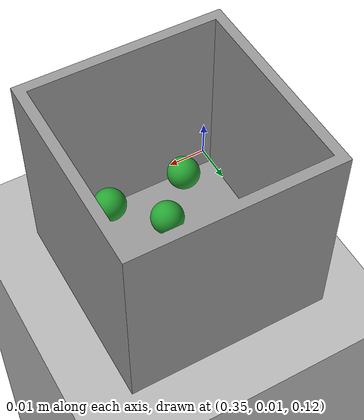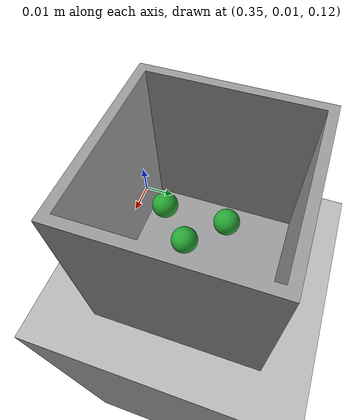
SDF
<sdf version="1.4">
  <world name="default">
    <include>
      <uri>model://sun</uri>
    </include>
    <include>
      <uri>model://ground_plane</uri>
    </include>
    <include>
      <uri>model://soil</uri>
      <pose>-50 -50 0 0 0 0 </pose>
    </include>
    <include>
      <uri>model://bag</uri>
      <pose>0.35 0.015 0.1227 0 0 0 </pose>
    </include>
    <include>
      <uri>model://seed</uri>
      <pose>0.36 0.02 0.13 0 0 0 </pose>
    </include>
    <include>
      <uri>model://seed</uri>
      <pose>0.37 0.03 0.13 0 0 0 </pose>
    </include>
    <include>
      <uri>model://seed</uri>
      <pose>0.38 0.04 0.13 0 0 0 </pose>
    </include>
    <include>
      <uri>model://seed</uri>
      <pose>0.36 0.04 0.13 0 0 0 </pose>
    </include>
    <include>
      <uri>model://seed</uri>
      <pose>0.38 0.02 0.13 0 0 0 </pose>
    </include>
  </world>
</sdf>

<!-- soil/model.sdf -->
<sdf version="1.5">
  <model name="soil">
    <static>true</static>
    <link name="link">
      <collision name="collision">
        <geometry>
          <mesh>
            <uri>model://soil/meshes/soil.STL</uri>
            <scale>0.05 0.05 0.00122749999</scale>
          </mesh>
        </geometry>
        <surface>
          <friction>
            <ode>
              <mu>100</mu>
              <mu2>50</mu2>
            </ode>
          </friction>
        </surface>
      </collision>
      <visual name="visual">
        <geometry>
          <mesh>
            <uri>model://soil/meshes/soil.STL</uri>
            <scale>0.05 0.05 0.00122749999</scale>
          </mesh>
        </geometry>
        <material>
          <script>
            <uri>model://soil/materials/scripts</uri>
            <uri>model://soil/materials/textures</uri>
            <name>soil/Image</name>
          </script>
        </material>
      </visual>
    </link>
  </model>
</sdf>

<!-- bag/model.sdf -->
<sdf version="1.5">
  <model name="bag">
    <static>false</static>
    <link name="link">
      <inertial>
        <pose>0.025 0.025 0 0 0 0</pose>
        <mass>10.0</mass>
        <inertia>
          <ixx>0.00096654</ixx>
          <ixy>0.00000000</ixy>
          <ixz>0.00000000</ixz>
          <iyy>0.00096654</iyy>
          <iyz>0.00000000</iyz>
          <izz>0.00064040</izz>
        </inertia>
      </inertial>
      <collision name="collision">
        <geometry>
          <mesh>
            <uri>model://bag/meshes/bag.STL</uri>
            <scale>0.0005 0.0005 0.0005</scale>
          </mesh>
        </geometry>
        <surface>
          <friction>
            <ode>
              <mu>1000000</mu>
              <mu2>1000000</mu2>
            </ode>
          </friction>
        </surface>
      </collision>
      <visual name="visual">
        <geometry>
          <mesh>
            <uri>model://bag/meshes/bag.STL</uri>
            <scale>0.0005 0.0005 0.0005</scale>
          </mesh>
        </geometry>
        <material>
          <script>
            <uri>file://media/materials/scripts/gazebo.material</uri>
            <name>Gazebo/Grey</name>
          </script>
        </material>
      </visual>
    </link>
  </model>
</sdf>

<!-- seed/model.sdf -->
<sdf version="1.5">
  <model name="seed">
    <static>false</static>
    <link name="link">
      <collision name="collision">
        <geometry>
          <mesh>
            <uri>model://seed/meshes/seed.STL</uri>
            <scale>0.004 0.004 0.004</scale>
          </mesh>
        </geometry>
        <surface>
          <friction>
            <ode>
              <mu>10000</mu>
              <mu2>10000</mu2>
            </ode>
          </friction>
        </surface>
      </collision>
      <visual name="visual">
        <geometry>
          <mesh>
            <uri>model://seed/meshes/seed.STL</uri>
            <scale>0.004 0.004 0.004</scale>
          </mesh>
        </geometry>
        <material>
          <script>
            <uri>file://media/materials/scripts/gazebo.material</uri>
            <name>Gazebo/Green</name>
          </script>
        </material>
      </visual>
    </link>
  </model>
</sdf>
